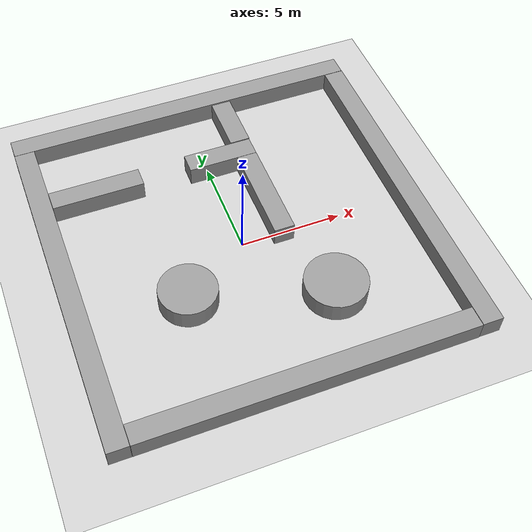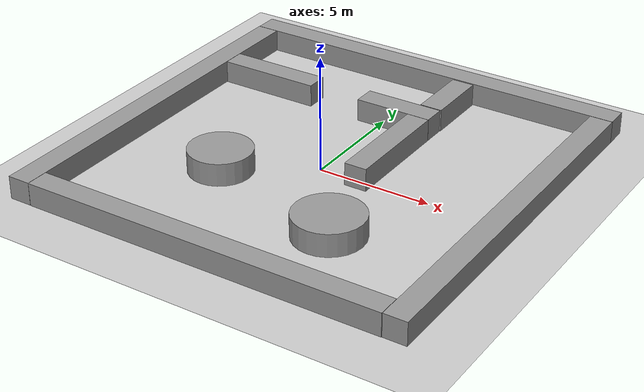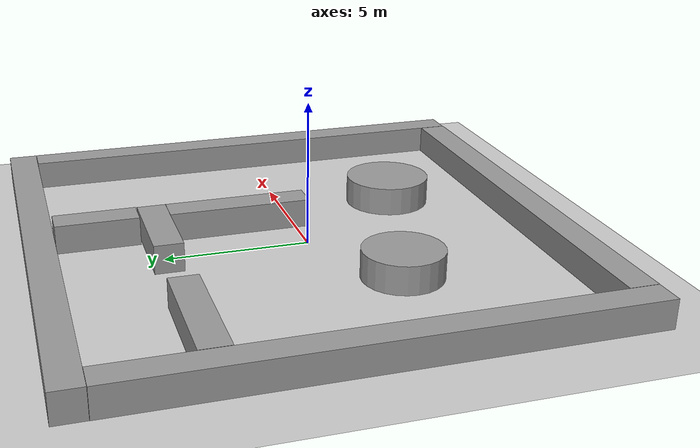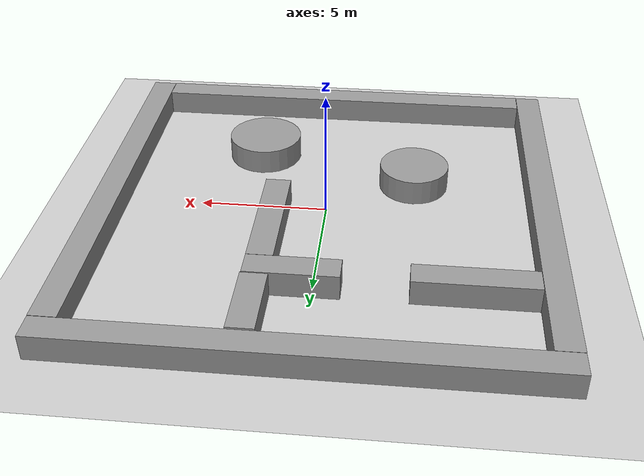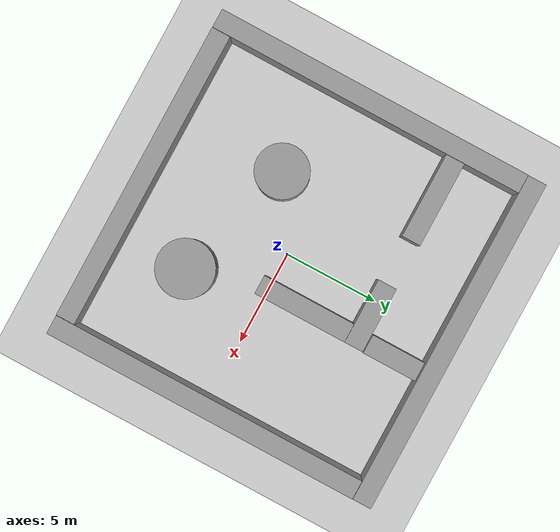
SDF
<sdf version="1.4">
 <world name="default">
  <light name="sun" type="directional">
   <pose>0 0 10 0 -0 0</pose>
   <diffuse>0.8 0.8 0.8 1</diffuse>
   <specular>0.2 0.2 0.2 1</specular>
   <attenuation>
    <range>1000</range>
    <constant>0.9</constant>
    <linear>0.01</linear>
    <quadratic>0.001</quadratic>
   </attenuation>
   <direction>-0.5 0.1 -0.9</direction>
  </light>
  <model name="ground_plane">
   <static>1</static>
   <link name="link">
    <collision name="collision">
     <geometry><plane><normal>0 0 1</normal><size>100 100</size></plane></geometry>
     <surface><friction><ode><mu>100</mu><mu2>50</mu2></ode></friction></surface>
    </collision>
    <visual name="visual">
     <cast_shadows>0</cast_shadows>
     <geometry><plane><normal>0 0 1</normal><size>100 100</size></plane></geometry>
     <material>
      <script><uri>file://media/materials/scripts/gazebo.material</uri><name>Gazebo/Grey</name></script>
     </material>
    </visual>
    <velocity_decay><linear>0</linear><angular>0</angular></velocity_decay>
   </link>
  </model>
  <physics type="ode">
   <max_step_size>0.001</max_step_size>
   <real_time_factor>1</real_time_factor>
   <real_time_update_rate>1000</real_time_update_rate>
   <gravity>0 0 -9.8</gravity>
  </physics>
  <scene><ambient>0.4 0.4 0.4 1</ambient><background>0.7 0.7 0.7 1</background><shadows>1</shadows></scene>
  <spherical_coordinates>
   <surface_model>EARTH_WGS84</surface_model>
   <latitude_deg>0</latitude_deg>
   <longitude_deg>0</longitude_deg>
   <elevation>0</elevation>
   <heading_deg>0</heading_deg>
  </spherical_coordinates>
  <model name="unit_box_1">
   <pose>0 -8 0.5 0 -0 0</pose>
   <link name="link">
    <inertial>
     <mass>1</mass>
     <inertia><ixx>1</ixx><ixy>0</ixy><ixz>0</ixz><iyy>1</iyy><iyz>0</iyz><izz>1</izz></inertia>
    </inertial>
    <collision name="collision"><geometry><box><size>15.9568 1 1</size></box></geometry></collision>
    <visual name="visual">
     <geometry><box><size>15.9568 1 1</size></box></geometry>
     <material>
      <script><uri>file://media/materials/scripts/gazebo.material</uri><name>Gazebo/Grey</name></script>
     </material>
    </visual>
    <velocity_decay><linear>0</linear><angular>0</angular></velocity_decay>
   </link>
   <static>1</static>
  </model>
  <model name="unit_box_2">
   <pose>-8.49123 0 0.5 0 -0 0</pose>
   <link name="link">
    <inertial>
     <mass>1</mass>
     <inertia><ixx>1</ixx><ixy>0</ixy><ixz>0</ixz><iyy>1</iyy><iyz>0</iyz><izz>1</izz></inertia>
    </inertial>
    <collision name="collision"><geometry><box><size>1 16.9838 1</size></box></geometry></collision>
    <visual name="visual">
     <geometry><box><size>1 16.9838 1</size></box></geometry>
     <material>
      <script><uri>file://media/materials/scripts/gazebo.material</uri><name>Gazebo/Grey</name></script>
     </material>
    </visual>
    <velocity_decay><linear>0</linear><angular>0</angular></velocity_decay>
   </link>
   <static>1</static>
  </model>
  <model name="unit_box_3">
   <pose>8.49214 0 0.5 0 -0 0</pose>
   <link name="link">
    <inertial>
     <mass>1</mass>
     <inertia><ixx>1</ixx><ixy>0</ixy><ixz>0</ixz><iyy>1</iyy><iyz>0</iyz><izz>1</izz></inertia>
    </inertial>
    <collision name="collision"><geometry><box><size>1 16.9681 1</size></box></geometry></collision>
    <visual name="visual">
     <geometry><box><size>1 16.9681 1</size></box></geometry>
     <material>
      <script><uri>file://media/materials/scripts/gazebo.material</uri><name>Gazebo/Grey</name></script>
     </material>
    </visual>
    <velocity_decay><linear>0</linear><angular>0</angular></velocity_decay>
   </link>
   <static>1</static>
  </model>
  <model name="unit_box_4">
   <pose>0 9 0.5 0 -0 0</pose>
   <link name="link">
    <inertial>
     <mass>1</mass>
     <inertia><ixx>1</ixx><ixy>0</ixy><ixz>0</ixz><iyy>1</iyy><iyz>0</iyz><izz>1</izz></inertia>
    </inertial>
    <collision name="collision"><geometry><box><size>17.9626 1 1</size></box></geometry></collision>
    <visual name="visual">
     <geometry><box><size>17.9626 1 1</size></box></geometry>
     <material>
      <script><uri>file://media/materials/scripts/gazebo.material</uri><name>Gazebo/Grey</name></script>
     </material>
    </visual>
    <velocity_decay><linear>0</linear><angular>0</angular></velocity_decay>
   </link>
   <static>1</static>
  </model>
  <model name="unit_cylinder_1">
   <pose>-3.43248 -2.15396 0.5 0 -0 0</pose>
   <link name="link">
    <inertial>
     <mass>1</mass>
     <inertia><ixx>1</ixx><ixy>0</ixy><ixz>0</ixz><iyy>1</iyy><iyz>0</iyz><izz>1</izz></inertia>
    </inertial>
    <collision name="collision">
     <geometry><cylinder><radius>1.39104</radius><length>1</length></cylinder></geometry>
    </collision>
    <visual name="visual">
     <geometry><cylinder><radius>1.39104</radius><length>1</length></cylinder></geometry>
     <material>
      <script><uri>file://media/materials/scripts/gazebo.material</uri><name>Gazebo/Grey</name></script>
     </material>
    </visual>
    <velocity_decay><linear>0</linear><angular>0</angular></velocity_decay>
   </link>
   <static>1</static>
  </model>
  <model name="unit_box_5">
   <pose>-5.71138 5 0.5 0 -0 0</pose>
   <link name="link">
    <inertial>
     <mass>1</mass>
     <inertia><ixx>1</ixx><ixy>0</ixy><ixz>0</ixz><iyy>1</iyy><iyz>0</iyz><izz>1</izz></inertia>
    </inertial>
    <collision name="collision"><geometry><box><size>4.53436 1 1</size></box></geometry></collision>
    <visual name="visual">
     <geometry><box><size>4.53436 1 1</size></box></geometry>
     <material>
      <script><uri>file://media/materials/scripts/gazebo.material</uri><name>Gazebo/Grey</name></script>
     </material>
    </visual>
    <velocity_decay><linear>0</linear><angular>0</angular></velocity_decay>
   </link>
   <static>1</static>
  </model>
  <model name="unit_box_6">
   <pose>0.706179 5 0.5 0 -0 0</pose>
   <link name="link">
    <inertial>
     <mass>1</mass>
     <inertia><ixx>1</ixx><ixy>0</ixy><ixz>0</ixz><iyy>1</iyy><iyz>0</iyz><izz>1</izz></inertia>
    </inertial>
    <collision name="collision"><geometry><box><size>3.47449 1 1</size></box></geometry></collision>
    <visual name="visual">
     <geometry><box><size>3.47449 1 1</size></box></geometry>
     <material>
      <script><uri>file://media/materials/scripts/gazebo.material</uri><name>Gazebo/Grey</name></script>
     </material>
    </visual>
    <velocity_decay><linear>0</linear><angular>0</angular></velocity_decay>
   </link>
   <static>1</static>
  </model>
  <model name="unit_cylinder_2">
   <pose>3 -4.04051 0.5 0 -0 0</pose>
   <link name="link">
    <inertial>
     <mass>1</mass>
     <inertia><ixx>1</ixx><ixy>0</ixy><ixz>0</ixz><iyy>1</iyy><iyz>0</iyz><izz>1</izz></inertia>
    </inertial>
    <collision name="collision">
     <geometry><cylinder><radius>1.50935</radius><length>1</length></cylinder></geometry>
    </collision>
    <visual name="visual">
     <geometry><cylinder><radius>1.50935</radius><length>1</length></cylinder></geometry>
     <material>
      <script><uri>file://media/materials/scripts/gazebo.material</uri><name>Gazebo/Grey</name></script>
     </material>
    </visual>
    <velocity_decay><linear>0</linear><angular>0</angular></velocity_decay>
   </link>
   <static>1</static>
  </model>
  <model name="unit_box_7">
   <pose>1.97225 6.98397 0.5 0 -0 0</pose>
   <link name="link">
    <inertial>
     <mass>1</mass>
     <inertia><ixx>1</ixx><ixy>0</ixy><ixz>0</ixz><iyy>1</iyy><iyz>0</iyz><izz>1</izz></inertia>
    </inertial>
    <collision name="collision"><geometry><box><size>1 2.8726 1</size></box></geometry></collision>
    <visual name="visual">
     <geometry><box><size>1 2.8726 1</size></box></geometry>
     <material>
      <script><uri>file://media/materials/scripts/gazebo.material</uri><name>Gazebo/Grey</name></script>
     </material>
    </visual>
    <velocity_decay><linear>0</linear><angular>0</angular></velocity_decay>
   </link>
   <static>1</static>
  </model>
  <model name="unit_box_8">
   <pose>1.94431 2 0.5 0 -0 0</pose>
   <link name="link">
    <inertial>
     <mass>1</mass>
     <inertia><ixx>1</ixx><ixy>0</ixy><ixz>0</ixz><iyy>1</iyy><iyz>0</iyz><izz>1</izz></inertia>
    </inertial>
    <collision name="collision"><geometry><box><size>1 4.9869 1</size></box></geometry></collision>
    <visual name="visual">
     <geometry><box><size>1 4.9869 1</size></box></geometry>
     <material>
      <script><uri>file://media/materials/scripts/gazebo.material</uri><name>Gazebo/Grey</name></script>
     </material>
    </visual>
    <velocity_decay><linear>0</linear><angular>0</angular></velocity_decay>
   </link>
   <static>1</static>
  </model>
 </world>
</sdf>
